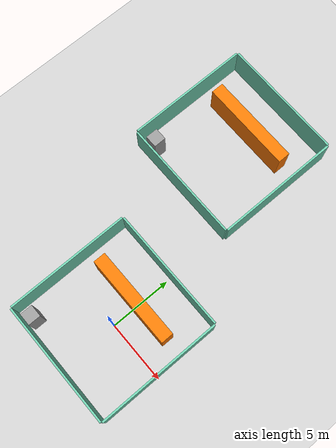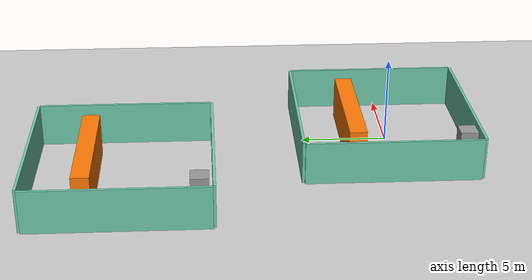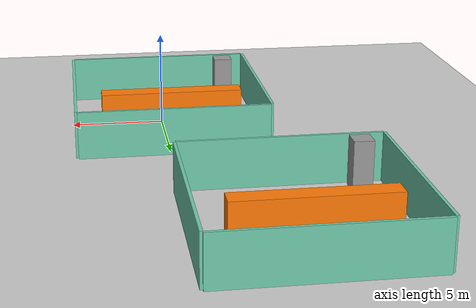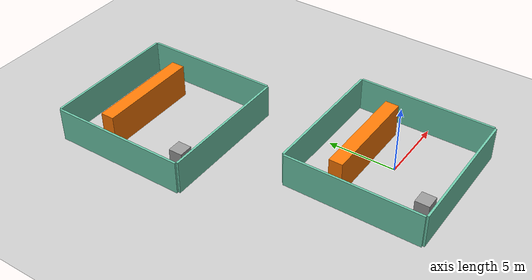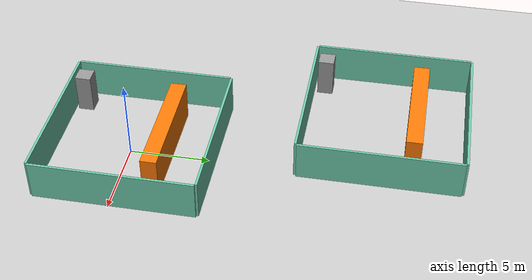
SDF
<sdf version="1.7">
 <world name="default">
  <light name="sun" type="directional">
   <pose>0 0 10 0 -0 0</pose>
   <diffuse>0.8 0.8 0.8 1</diffuse>
   <specular>0.2 0.2 0.2 1</specular>
   <attenuation>
    <range>1000</range>
    <constant>0.9</constant>
    <linear>0.01</linear>
    <quadratic>0.001</quadratic>
   </attenuation>
   <direction>-0.5 0.1 -0.9</direction>
   <spot><inner_angle>0</inner_angle><outer_angle>0</outer_angle><falloff>0</falloff></spot>
  </light>
  <model name="ground_plane">
   <static>1</static>
   <link name="link">
    <collision name="collision">
     <geometry><plane><normal>0 0 1</normal><size>100 100</size></plane></geometry>
     <surface>
      <contact><collide_bitmask>65535</collide_bitmask></contact>
      <friction><ode><mu>100</mu><mu2>50</mu2></ode></friction>
     </surface>
    </collision>
    <visual name="visual">
     <cast_shadows>0</cast_shadows>
     <geometry><plane><normal>0 0 1</normal><size>100 100</size></plane></geometry>
     <material>
      <script><uri>file://media/materials/scripts/gazebo.material</uri><name>Gazebo/Grey</name></script>
     </material>
    </visual>
   </link>
  </model>
  <gravity>0 0 -9.8</gravity>
  <magnetic_field>6e-06 2.3e-05 -4.2e-05</magnetic_field>
  <atmosphere type="adiabatic"/>
  <physics type="ode">
   <max_step_size>0.001</max_step_size>
   <real_time_factor>1</real_time_factor>
   <real_time_update_rate>1000</real_time_update_rate>
  </physics>
  <scene><ambient>0.4 0.4 0.4 1</ambient><background>0.7 0.7 0.7 1</background><shadows>1</shadows></scene>
  <spherical_coordinates>
   <surface_model>EARTH_WGS84</surface_model>
   <latitude_deg>0</latitude_deg>
   <longitude_deg>0</longitude_deg>
   <elevation>0</elevation>
   <heading_deg>0</heading_deg>
  </spherical_coordinates>
  <model name="deneme1">
   <pose>-0.247 0.3135 0 0 -0 0</pose>
   <link name="Wall_0">
    <collision name="Wall_0_Collision">
     <geometry><box><size>10 0.15 2.5</size></box></geometry>
     <pose>0 0 1.25 0 -0 0</pose>
    </collision>
    <visual name="Wall_0_Visual">
     <pose>0 0 1.25 0 -0 0</pose>
     <geometry><box><size>10 0.15 2.5</size></box></geometry>
     <material>
      <script><uri>file://media/materials/scripts/gazebo.material</uri><name>Gazebo/Grey</name></script>
      <ambient>0.435294 0.796078 0.67451 1</ambient>
     </material>
     <meta><layer>0</layer></meta>
    </visual>
    <pose>0.002 -5.0785 0 0 -0 0</pose>
   </link>
   <link name="Wall_11">
    <collision name="Wall_11_Collision">
     <geometry><box><size>1 1 2.5</size></box></geometry>
     <pose>0 0 1.25 0 -0 0</pose>
    </collision>
    <visual name="Wall_11_Visual">
     <pose>0 0 1.25 0 -0 0</pose>
     <geometry><box><size>1 1 2.5</size></box></geometry>
     <material>
      <script><uri>file://media/materials/scripts/gazebo.material</uri><name>Gazebo/Grey</name></script>
      <ambient>1 1 1 1</ambient>
     </material>
     <meta><layer>0</layer></meta>
    </visual>
    <pose>-3.753 -4.3135 0 0 -0 0</pose>
   </link>
   <link name="Wall_2">
    <collision name="Wall_2_Collision">
     <geometry><box><size>10 0.15 2.5</size></box></geometry>
     <pose>0 0 1.25 0 -0 0</pose>
    </collision>
    <visual name="Wall_2_Visual">
     <pose>0 0 1.25 0 -0 0</pose>
     <geometry><box><size>10 0.15 2.5</size></box></geometry>
     <material>
      <script><uri>file://media/materials/scripts/gazebo.material</uri><name>Gazebo/Grey</name></script>
      <ambient>0.435294 0.796078 0.67451 1</ambient>
     </material>
     <meta><layer>0</layer></meta>
    </visual>
    <pose>-5.066 -0.0015 0 0 -0 1.5708</pose>
   </link>
   <link name="Wall_28">
    <collision name="Wall_28_Collision">
     <geometry><box><size>7.5 1 2.5</size></box></geometry>
     <pose>0 0 1.25 0 -0 0</pose>
    </collision>
    <visual name="Wall_28_Visual">
     <pose>0 0 1.25 0 -0 0</pose>
     <geometry><box><size>7.5 1 2.5</size></box></geometry>
     <material>
      <script><uri>file://media/materials/scripts/gazebo.material</uri><name>Gazebo/Grey</name></script>
      <ambient>0.996078 0.47451 0.0196078 1</ambient>
     </material>
     <meta><layer>0</layer></meta>
    </visual>
    <pose>-0.099 1.8955 0 0 -0 0</pose>
   </link>
   <link name="Wall_4">
    <collision name="Wall_4_Collision">
     <geometry><box><size>10 0.15 2.5</size></box></geometry>
     <pose>0 0 1.25 0 -0 0</pose>
    </collision>
    <visual name="Wall_4_Visual">
     <pose>0 0 1.25 0 -0 0</pose>
     <geometry><box><size>10 0.15 2.5</size></box></geometry>
     <material>
      <script><uri>file://media/materials/scripts/gazebo.material</uri><name>Gazebo/Grey</name></script>
      <ambient>0.435294 0.796078 0.67451 1</ambient>
     </material>
     <meta><layer>0</layer></meta>
    </visual>
    <pose>0.01 5.0785 0 0 -0 0</pose>
   </link>
   <link name="Wall_6">
    <collision name="Wall_6_Collision">
     <geometry><box><size>10 0.15 2.5</size></box></geometry>
     <pose>0 0 1.25 0 -0 0</pose>
    </collision>
    <visual name="Wall_6_Visual">
     <pose>0 0 1.25 0 -0 0</pose>
     <geometry><box><size>10 0.15 2.5</size></box></geometry>
     <material>
      <script><uri>file://media/materials/scripts/gazebo.material</uri><name>Gazebo/Grey</name></script>
      <ambient>0.435294 0.796078 0.67451 1</ambient>
     </material>
     <meta><layer>0</layer></meta>
    </visual>
    <pose>5.066 0.0085 0 0 -0 1.5708</pose>
   </link>
   <static>1</static>
  </model>
  <model name="deneme1_0">
   <pose>-4.74048 15.4727 0 0 -0 0</pose>
   <link name="Wall_0">
    <collision name="Wall_0_Collision">
     <geometry><box><size>10 0.15 2.5</size></box></geometry>
     <pose>0 0 1.25 0 -0 0</pose>
    </collision>
    <visual name="Wall_0_Visual">
     <pose>0 0 1.25 0 -0 0</pose>
     <geometry><box><size>10 0.15 2.5</size></box></geometry>
     <material>
      <script><uri>file://media/materials/scripts/gazebo.material</uri><name>Gazebo/Grey</name></script>
      <ambient>0.435294 0.796078 0.67451 1</ambient>
     </material>
     <meta><layer>0</layer></meta>
    </visual>
    <pose>0.002 -5.0785 0 0 -0 0</pose>
   </link>
   <link name="Wall_11">
    <collision name="Wall_11_Collision">
     <geometry><box><size>1 1 2.5</size></box></geometry>
     <pose>0 0 1.25 0 -0 0</pose>
    </collision>
    <visual name="Wall_11_Visual">
     <pose>0 0 1.25 0 -0 0</pose>
     <geometry><box><size>1 1 2.5</size></box></geometry>
     <material>
      <script><uri>file://media/materials/scripts/gazebo.material</uri><name>Gazebo/Grey</name></script>
      <ambient>1 1 1 1</ambient>
     </material>
     <meta><layer>0</layer></meta>
    </visual>
    <pose>-3.753 -4.3135 0 0 -0 0</pose>
   </link>
   <link name="Wall_2">
    <collision name="Wall_2_Collision">
     <geometry><box><size>10 0.15 2.5</size></box></geometry>
     <pose>0 0 1.25 0 -0 0</pose>
    </collision>
    <visual name="Wall_2_Visual">
     <pose>0 0 1.25 0 -0 0</pose>
     <geometry><box><size>10 0.15 2.5</size></box></geometry>
     <material>
      <script><uri>file://media/materials/scripts/gazebo.material</uri><name>Gazebo/Grey</name></script>
      <ambient>0.435294 0.796078 0.67451 1</ambient>
     </material>
     <meta><layer>0</layer></meta>
    </visual>
    <pose>-5.066 -0.0015 0 0 -0 1.5708</pose>
   </link>
   <link name="Wall_28">
    <collision name="Wall_28_Collision">
     <geometry><box><size>7.5 1 2.5</size></box></geometry>
     <pose>0 0 1.25 0 -0 0</pose>
    </collision>
    <visual name="Wall_28_Visual">
     <pose>0 0 1.25 0 -0 0</pose>
     <geometry><box><size>7.5 1 2.5</size></box></geometry>
     <material>
      <script><uri>file://media/materials/scripts/gazebo.material</uri><name>Gazebo/Grey</name></script>
      <ambient>0.996078 0.47451 0.0196078 1</ambient>
     </material>
     <meta><layer>0</layer></meta>
    </visual>
    <pose>-0.099 1.8955 0 0 -0 0</pose>
   </link>
   <link name="Wall_4">
    <collision name="Wall_4_Collision">
     <geometry><box><size>10 0.15 2.5</size></box></geometry>
     <pose>0 0 1.25 0 -0 0</pose>
    </collision>
    <visual name="Wall_4_Visual">
     <pose>0 0 1.25 0 -0 0</pose>
     <geometry><box><size>10 0.15 2.5</size></box></geometry>
     <material>
      <script><uri>file://media/materials/scripts/gazebo.material</uri><name>Gazebo/Grey</name></script>
      <ambient>0.435294 0.796078 0.67451 1</ambient>
     </material>
     <meta><layer>0</layer></meta>
    </visual>
    <pose>0.01 5.0785 0 0 -0 0</pose>
   </link>
   <link name="Wall_6">
    <collision name="Wall_6_Collision">
     <geometry><box><size>10 0.15 2.5</size></box></geometry>
     <pose>0 0 1.25 0 -0 0</pose>
    </collision>
    <visual name="Wall_6_Visual">
     <pose>0 0 1.25 0 -0 0</pose>
     <geometry><box><size>10 0.15 2.5</size></box></geometry>
     <material>
      <script><uri>file://media/materials/scripts/gazebo.material</uri><name>Gazebo/Grey</name></script>
      <ambient>0.435294 0.796078 0.67451 1</ambient>
     </material>
     <meta><layer>0</layer></meta>
    </visual>
    <pose>5.066 0.0085 0 0 -0 1.5708</pose>
   </link>
   <static>1</static>
  </model>
 </world>
</sdf>
